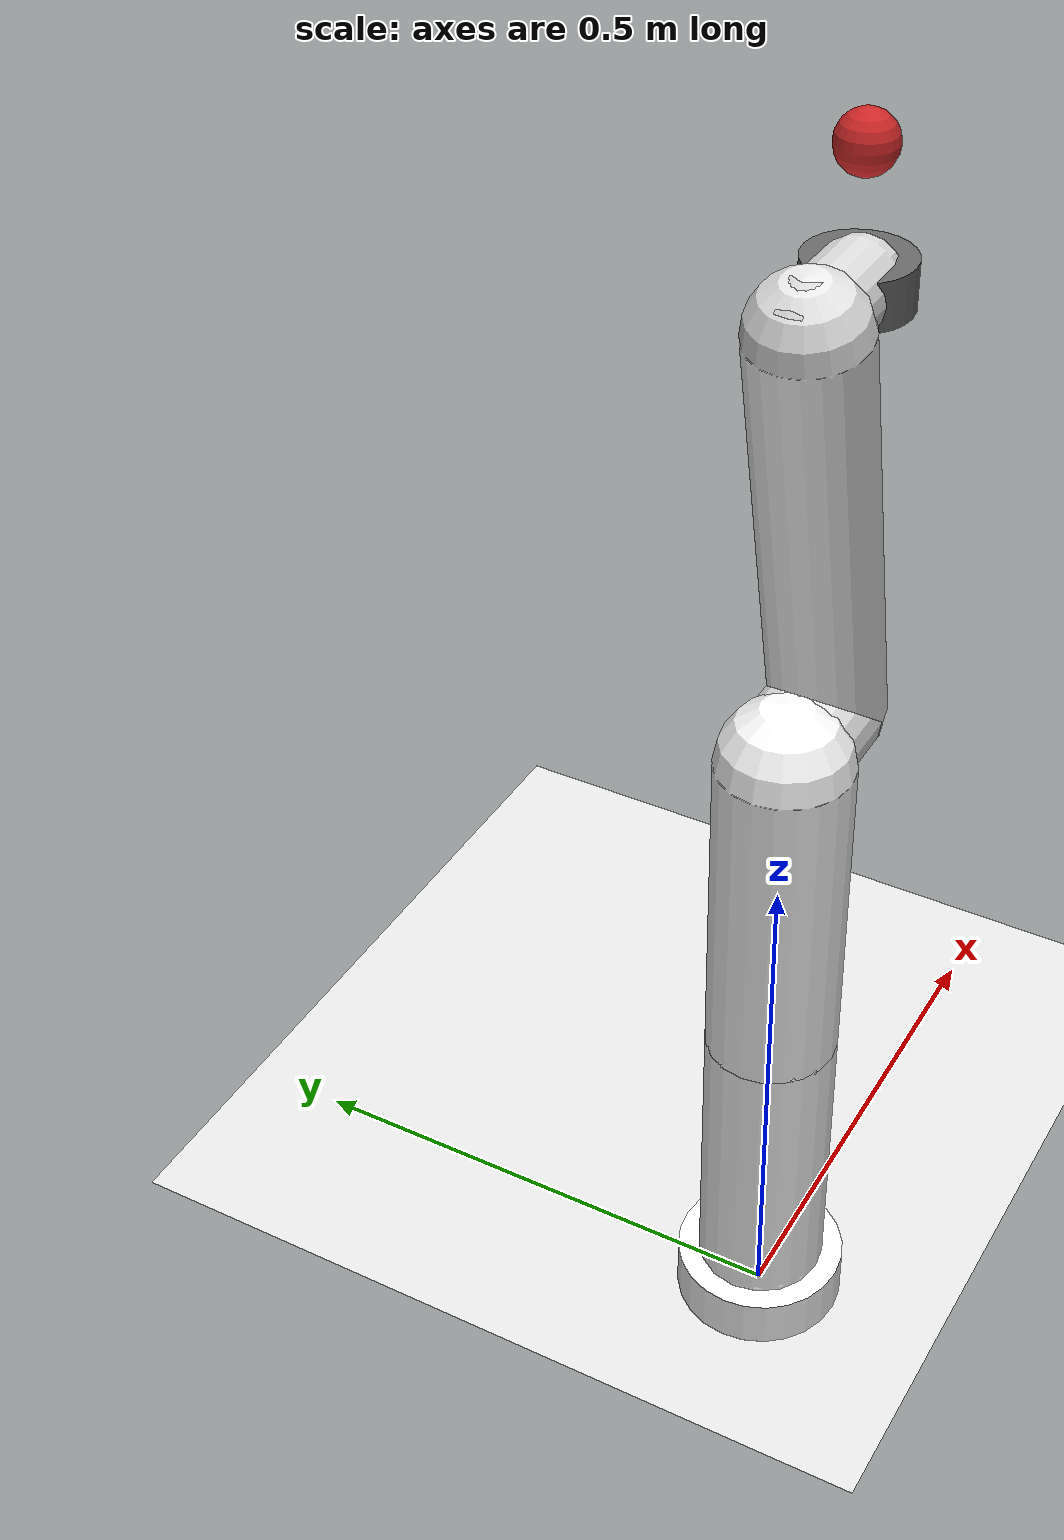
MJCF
<mujoco model="franka_panda">
  <compiler angle="radian" autolimits="true"/>

  <option gravity="0 0 -9.81" timestep="0.002"/>

  <default>
    <joint damping="10" armature="0.1"/>
    <geom type="capsule" rgba="0.9 0.9 0.9 1" contype="0" conaffinity="0"/>
    <position kp="200"/>
  </default>

  <asset>
    <texture type="2d" name="grid" builtin="checker" width="512" height="512"
             rgb1="0.3 0.3 0.3" rgb2="0.4 0.4 0.4"/>
    <material name="grid" texture="grid" texrepeat="8 8" reflectance="0.2"/>
  </asset>

  <worldbody>
    <light pos="0 0 3" dir="0 0 -1" diffuse="0.8 0.8 0.8"/>
    <light pos="1 1 3" dir="-0.3 -0.3 -1" diffuse="0.5 0.5 0.5"/>
    <geom type="plane" size="2 2 0.01" material="grid"/>

    <!-- Base -->
    <body name="base" pos="0 0 0">
      <geom type="cylinder" size="0.08 0.025" pos="0 0 0.025" rgba="1 1 1 1"/>

      <!-- Link 1: base rotation -->
      <body name="link1" pos="0 0 0.333">
        <joint name="j1" axis="0 0 1" range="-2.8973 2.8973"/>
        <geom fromto="0 0 0 0 0 -0.28" size="0.06" rgba="1 1 1 1"/>

        <!-- Link 2: shoulder pitch -->
        <body name="link2" pos="0 0 0">
          <joint name="j2" axis="0 1 0" range="-1.7628 1.7628"/>
          <geom fromto="0 0 0 0 0 0.31" size="0.06" rgba="1 1 1 1"/>

          <!-- Link 3: upper arm rotation -->
          <body name="link3" pos="0 0 0.316">
            <joint name="j3" axis="0 0 1" range="-2.8973 2.8973"/>
            <geom fromto="0 0 0 0.08 0 0" size="0.05" rgba="0.9 0.9 0.9 1"/>

            <!-- Link 4: elbow -->
            <body name="link4" pos="0.0825 0 0">
              <joint name="j4" axis="0 -1 0" range="-3.0718 -0.0698"/>
              <geom fromto="0 0 0 -0.08 0 0.38" size="0.05" rgba="0.9 0.9 0.9 1"/>

              <!-- Link 5: forearm rotation -->
              <body name="link5" pos="-0.0825 0 0.384">
                <joint name="j5" axis="0 0 1" range="-2.8973 2.8973"/>
                <geom type="sphere" size="0.045" rgba="0.85 0.85 0.85 1"/>

                <!-- Link 6: wrist pitch -->
                <body name="link6" pos="0 0 0">
                  <joint name="j6" axis="0 1 0" range="-0.0175 3.7525"/>
                  <geom fromto="0 0 0 0.088 0 0" size="0.035" rgba="0.85 0.85 0.85 1"/>

                  <!-- Link 7: wrist roll -->
                  <body name="link7" pos="0.088 0 0">
                    <joint name="j7" axis="0 0 1" range="-2.8973 2.8973"/>
                    <geom type="cylinder" size="0.045 0.02" rgba="0.4 0.4 0.4 1"/>

                    <!-- End effector -->
                    <body name="ee" pos="0 0 0.107">
                      <geom type="sphere" size="0.025" rgba="0.8 0.15 0.15 1" contype="0" conaffinity="0"/>
                    </body>
                  </body>
                </body>
              </body>
            </body>
          </body>
        </body>
      </body>
    </body>
  </worldbody>

  <actuator>
    <position name="a1" joint="j1"/>
    <position name="a2" joint="j2"/>
    <position name="a3" joint="j3"/>
    <position name="a4" joint="j4"/>
    <position name="a5" joint="j5"/>
    <position name="a6" joint="j6"/>
    <position name="a7" joint="j7"/>
  </actuator>

  <keyframe>
    <!-- Typical Franka home pose -->
    <key name="home" qpos="0 -0.7854 0 -2.3562 0 1.5708 0.7854"/>
  </keyframe>
</mujoco>
